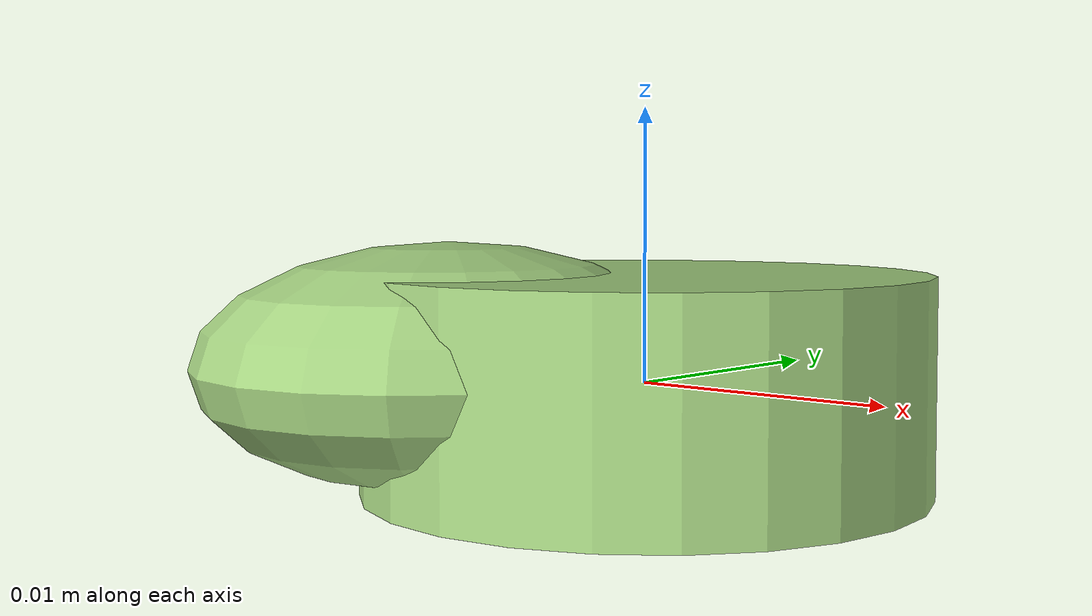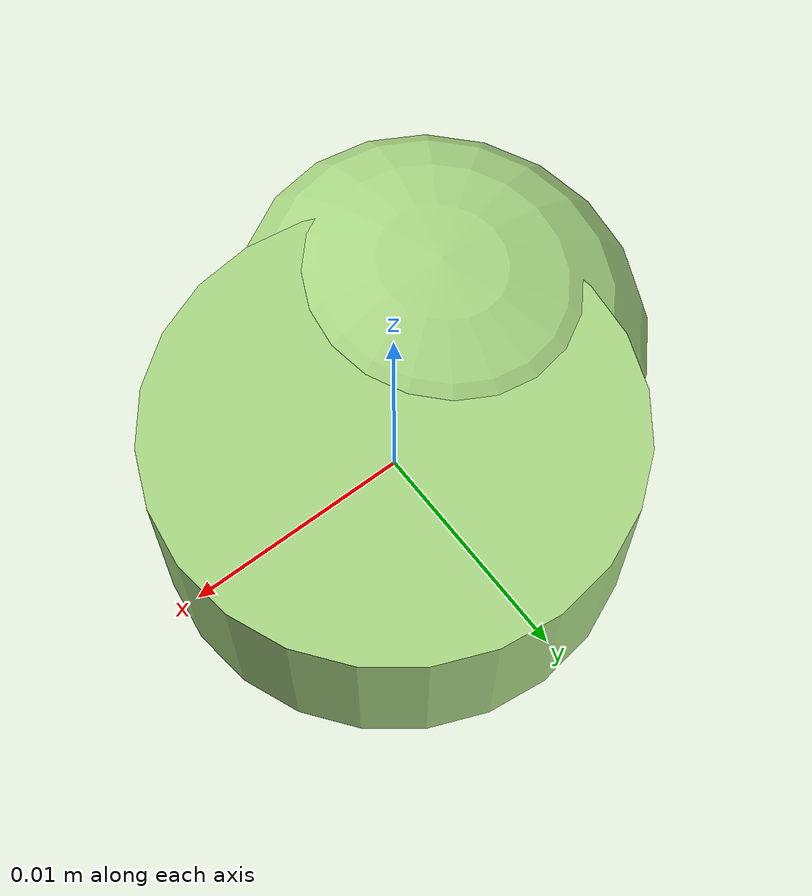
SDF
<?xml version="1.0" ?>
<!-- |    This document was autogenerated by xmacro from data/veggie_template/veggie_base.sdf.xacro  | -->
<!-- |    EDITING THIS FILE BY HAND IS NOT RECOMMENDED                                               | -->
<sdf version="1.8">
	<!-- Parameters -->
	<!-- Base -->
	<!-- Joint 0 -->
	<!-- Link 1 -->
	<!-- Joint 1 -->
	<!-- Link 2 -->
	<!-- Primitives -->
	<!-- All dimensions are half -->
	<!-- Object -->
	<model name="veggie">
		<!-- link0 -->
		<link name="link0">
			<inertial>
				<mass>0.0027102695447639245</mass>
				<inertia>
					<ixx>8.764210742996908e-08</ixx>
					<ixy>0</ixy>
					<ixz>0</ixz>
					<iyy>8.764210742996908e-08</iyy>
					<iyz>0</iyz>
					<izz>1.465305673668249e-07</izz>
				</inertia>
			</inertial>
			<visual name="link0_visual">
				<pose>0 0 0 0 0 0</pose>
				<geometry>
					<cylinder>
						<radius>0.010398552072235483</radius>
						<length>0.007978400895897811</length>
					</cylinder>
				</geometry>
				<material>
					<ambient>0.659 0.839 0.514 1</ambient>
					<diffuse>0.659 0.839 0.514 1</diffuse>
					<specular>0 0 0 0</specular>
					<emissive>0 0 0 1</emissive>
				</material>
			</visual>
			<collision name="link0_collision">
				<pose>0 0 0 0 0 0 </pose>
				<geometry>
					<cylinder>
						<radius>0.010398552072235483</radius>
						<length>0.007978400895897811</length>
					</cylinder>
				</geometry>
			</collision>
		</link>
		<!-- link1 -->
		<joint name="joint0" type="fixed">
			<pose relative_to="link0">-0.005801526196887853 -0.004293014890601505 0.0006408778574591669 0.0 0.0 0.0</pose>
			<parent>link0</parent>
			<child>link1</child>
		</joint>
		<link name="link1">
			<pose relative_to="joint0">0 0 0 0 0 0</pose>
			<inertial>
				<mass>0.0016141431129120863</mass>
				<inertia>
					<ixx>3.670326315796983e-08</ixx>
					<ixy>0</ixy>
					<ixz>0</ixz>
					<iyy>3.190572179386794e-08</iyy>
					<iyz>0</iyz>
					<izz>5.556798112756789e-08</izz>
				</inertia>
			</inertial>
			<visual name="link1_visual">
				<pose>0 0 0 0 0 0</pose>
				<geometry>
					<ellipsoid>
						<radii>0.008867566381086144 0.009669265106010197 0.004494221745374822</radii>
					</ellipsoid>
				</geometry>
				<material>
					<ambient>0.659 0.839 0.514 1</ambient>
					<diffuse>0.659 0.839 0.514 1</diffuse>
					<specular>0 0 0 0</specular>
					<emissive>0 0 0 1</emissive>
				</material>
			</visual>
			<collision name="link1_collision">
				<pose>0 0 0 0 0 0 </pose>
				<geometry>
					<ellipsoid>
						<radii>0.008867566381086144 0.009669265106010197 0.004494221745374822</radii>
					</ellipsoid>
				</geometry>
			</collision>
		</link>
		<!-- link2 -->
	</model>
</sdf>
